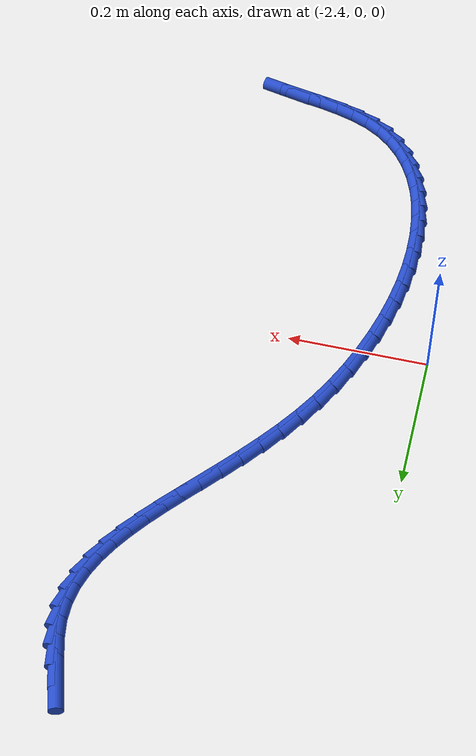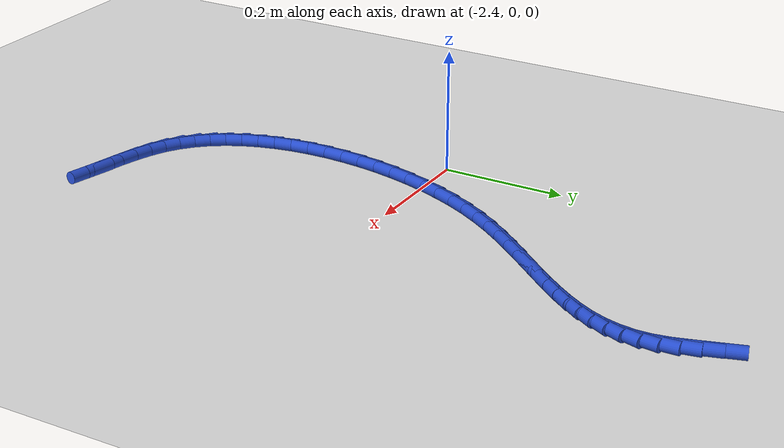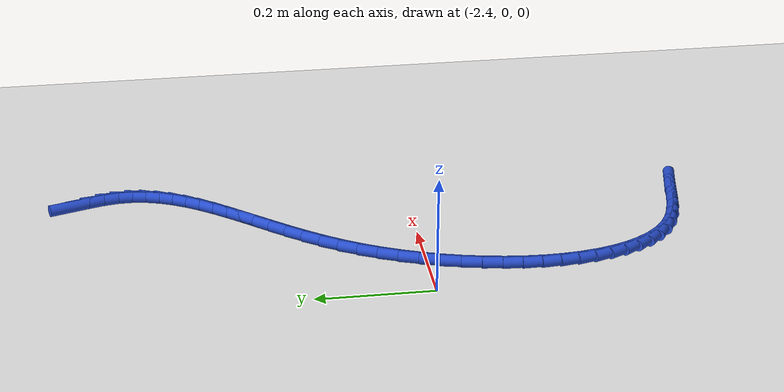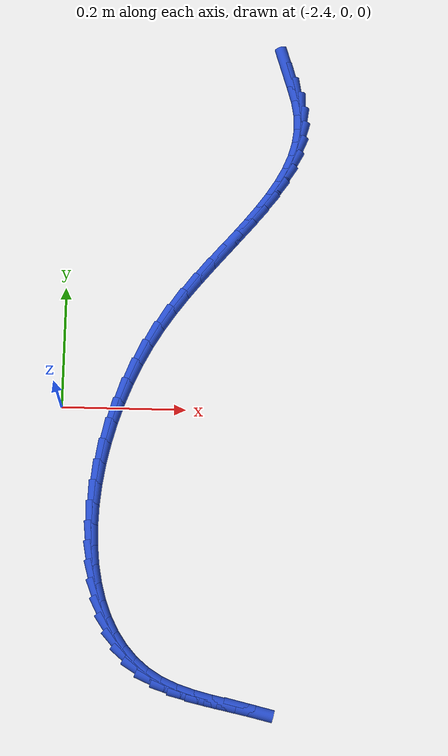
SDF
<sdf version="1.6">
 <world name="default">
  <model name="ground_plane">
   <static>1</static>
   <link name="link">
    <collision name="collision">
     <geometry><plane><normal>0 0 1</normal><size>100 100</size></plane></geometry>
     <surface><friction><ode><mu>100</mu><mu2>50</mu2></ode></friction></surface>
    </collision>
    <visual name="visual">
     <cast_shadows>0</cast_shadows>
     <geometry><plane><normal>0 0 1</normal><size>100 100</size></plane></geometry>
     <material>
      <script><uri>file://media/materials/scripts/gazebo.material</uri><name>Gazebo/WhiteGlow</name></script>
     </material>
    </visual>
   </link>
  </model>
  <model name="line">
   <link name="link_111">
    <pose>-2.042530612775515 0.583922815698654 0.01 0 1.57 -1.2663360719359715</pose>
    <collision name="collision">
     <geometry><cylinder><radius>0.01</radius><length>0.08</length></cylinder></geometry>
    </collision>
    <visual name="visual">
     <material>
      <script><name>Gazebo/Blue</name><uri>file://media/materials/scripts/gazebo.material</uri></script>
     </material>
     <geometry><cylinder><radius>0.01</radius><length>0.08</length></cylinder></geometry>
    </visual>
   </link>
   <link name="link_112">
    <pose>-2.0337556255550173 0.5559974590513748 0.01 0 1.57 -1.2861438327429282</pose>
    <collision name="collision">
     <geometry><cylinder><radius>0.01</radius><length>0.08</length></cylinder></geometry>
    </collision>
    <visual name="visual">
     <material>
      <script><name>Gazebo/Blue</name><uri>file://media/materials/scripts/gazebo.material</uri></script>
     </material>
     <geometry><cylinder><radius>0.01</radius><length>0.08</length></cylinder></geometry>
    </visual>
   </link>
   <link name="link_113">
    <pose>-2.02585379220341 0.5289917206235207 0.01 0 1.57 -1.3949134883984131</pose>
    <collision name="collision">
     <geometry><cylinder><radius>0.01</radius><length>0.08</length></cylinder></geometry>
    </collision>
    <visual name="visual">
     <material>
      <script><name>Gazebo/Blue</name><uri>file://media/materials/scripts/gazebo.material</uri></script>
     </material>
     <geometry><cylinder><radius>0.01</radius><length>0.08</length></cylinder></geometry>
    </visual>
   </link>
   <link name="link_114">
    <pose>-2.0212209493045847 0.5029233892982797 0.01 0 1.57 -1.551788739276246</pose>
    <collision name="collision">
     <geometry><cylinder><radius>0.01</radius><length>0.08</length></cylinder></geometry>
    </collision>
    <visual name="visual">
     <material>
      <script><name>Gazebo/Blue</name><uri>file://media/materials/scripts/gazebo.material</uri></script>
     </material>
     <geometry><cylinder><radius>0.01</radius><length>0.08</length></cylinder></geometry>
    </visual>
   </link>
   <link name="link_115">
    <pose>-2.020741853364173 0.47772091469248046 0.01 0 1.57 1.4352643036282615</pose>
    <collision name="collision">
     <geometry><cylinder><radius>0.01</radius><length>0.08</length></cylinder></geometry>
    </collision>
    <visual name="visual">
     <material>
      <script><name>Gazebo/Blue</name><uri>file://media/materials/scripts/gazebo.material</uri></script>
     </material>
     <geometry><cylinder><radius>0.01</radius><length>0.08</length></cylinder></geometry>
    </visual>
   </link>
   <link name="link_116">
    <pose>-2.0240801918986744 0.4532405534205878 0.01 0 1.57 1.2942461503685037</pose>
    <collision name="collision">
     <geometry><cylinder><radius>0.01</radius><length>0.08</length></cylinder></geometry>
    </collision>
    <visual name="visual">
     <material>
      <script><name>Gazebo/Blue</name><uri>file://media/materials/scripts/gazebo.material</uri></script>
     </material>
     <geometry><cylinder><radius>0.01</radius><length>0.08</length></cylinder></geometry>
    </visual>
   </link>
   <link name="link_117">
    <pose>-2.0308647114728076 0.42933649629059834 0.01 0 1.57 1.1731483797332016</pose>
    <collision name="collision">
     <geometry><cylinder><radius>0.01</radius><length>0.08</length></cylinder></geometry>
    </collision>
    <visual name="visual">
     <material>
      <script><name>Gazebo/Blue</name><uri>file://media/materials/scripts/gazebo.material</uri></script>
     </material>
     <geometry><cylinder><radius>0.01</radius><length>0.08</length></cylinder></geometry>
    </visual>
   </link>
   <link name="link_118">
    <pose>-2.040724158651291 0.40586293411050867 0.01 0 1.57 1.0742908915062597</pose>
    <collision name="collision">
     <geometry><cylinder><radius>0.01</radius><length>0.08</length></cylinder></geometry>
    </collision>
    <visual name="visual">
     <material>
      <script><name>Gazebo/Blue</name><uri>file://media/materials/scripts/gazebo.material</uri></script>
     </material>
     <geometry><cylinder><radius>0.01</radius><length>0.08</length></cylinder></geometry>
    </visual>
   </link>
   <link name="link_119">
    <pose>-2.053287279998844 0.3826740576883166 0.01 0 1.57 0.9970777525786176</pose>
    <collision name="collision">
     <geometry><cylinder><radius>0.01</radius><length>0.08</length></cylinder></geometry>
    </collision>
    <visual name="visual">
     <material>
      <script><name>Gazebo/Blue</name><uri>file://media/materials/scripts/gazebo.material</uri></script>
     </material>
     <geometry><cylinder><radius>0.01</radius><length>0.08</length></cylinder></geometry>
    </visual>
   </link>
   <link name="link_120">
    <pose>-2.0681828220801846 0.3596240578320188 0.01 0 1.57 0.9395073985905467</pose>
    <collision name="collision">
     <geometry><cylinder><radius>0.01</radius><length>0.08</length></cylinder></geometry>
    </collision>
    <visual name="visual">
     <material>
      <script><name>Gazebo/Blue</name><uri>file://media/materials/scripts/gazebo.material</uri></script>
     </material>
     <geometry><cylinder><radius>0.01</radius><length>0.08</length></cylinder></geometry>
    </visual>
   </link>
   <link name="link_121">
    <pose>-2.08503953146003 0.33656712534961203 0.01 0 1.57 0.8992454146757094</pose>
    <collision name="collision">
     <geometry><cylinder><radius>0.01</radius><length>0.08</length></cylinder></geometry>
    </collision>
    <visual name="visual">
     <material>
      <script><name>Gazebo/Blue</name><uri>file://media/materials/scripts/gazebo.material</uri></script>
     </material>
     <geometry><cylinder><radius>0.01</radius><length>0.08</length></cylinder></geometry>
    </visual>
   </link>
   <link name="link_122">
    <pose>-2.1034861547031 0.3133574510490935 0.01 0 1.57 0.8741757592519622</pose>
    <collision name="collision">
     <geometry><cylinder><radius>0.01</radius><length>0.08</length></cylinder></geometry>
    </collision>
    <visual name="visual">
     <material>
      <script><name>Gazebo/Blue</name><uri>file://media/materials/scripts/gazebo.material</uri></script>
     </material>
     <geometry><cylinder><radius>0.01</radius><length>0.08</length></cylinder></geometry>
    </visual>
   </link>
   <link name="link_123">
    <pose>-2.1231514383741135 0.28984922573845984 0.01 0 1.57 0.8626057586442114</pose>
    <collision name="collision">
     <geometry><cylinder><radius>0.01</radius><length>0.08</length></cylinder></geometry>
    </collision>
    <visual name="visual">
     <material>
      <script><name>Gazebo/Blue</name><uri>file://media/materials/scripts/gazebo.material</uri></script>
     </material>
     <geometry><cylinder><radius>0.01</radius><length>0.08</length></cylinder></geometry>
    </visual>
   </link>
   <link name="link_124">
    <pose>-2.1436641290377874 0.26589664022570864 0.01 0 1.57 0.8632939491763031</pose>
    <collision name="collision">
     <geometry><cylinder><radius>0.01</radius><length>0.08</length></cylinder></geometry>
    </collision>
    <visual name="visual">
     <material>
      <script><name>Gazebo/Blue</name><uri>file://media/materials/scripts/gazebo.material</uri></script>
     </material>
     <geometry><cylinder><radius>0.01</radius><length>0.08</length></cylinder></geometry>
    </visual>
   </link>
   <link name="link_125">
    <pose>-2.16465297325884 0.24135388531883656 0.01 0 1.57 0.8754016072882711</pose>
    <collision name="collision">
     <geometry><cylinder><radius>0.01</radius><length>0.08</length></cylinder></geometry>
    </collision>
    <visual name="visual">
     <material>
      <script><name>Gazebo/Blue</name><uri>file://media/materials/scripts/gazebo.material</uri></script>
     </material>
     <geometry><cylinder><radius>0.01</radius><length>0.08</length></cylinder></geometry>
    </visual>
   </link>
   <link name="link_126">
    <pose>-2.185746717601992 0.21607515182584036 0.01 0 1.57 0.8984145638575556</pose>
    <collision name="collision">
     <geometry><cylinder><radius>0.01</radius><length>0.08</length></cylinder></geometry>
    </collision>
    <visual name="visual">
     <material>
      <script><name>Gazebo/Blue</name><uri>file://media/materials/scripts/gazebo.material</uri></script>
     </material>
     <geometry><cylinder><radius>0.01</radius><length>0.08</length></cylinder></geometry>
    </visual>
   </link>
   <link name="link_127">
    <pose>-2.20657410863196 0.18991463055471763 0.01 0 1.57 0.932050727363296</pose>
    <collision name="collision">
     <geometry><cylinder><radius>0.01</radius><length>0.08</length></cylinder></geometry>
    </collision>
    <visual name="visual">
     <material>
      <script><name>Gazebo/Blue</name><uri>file://media/materials/scripts/gazebo.material</uri></script>
     </material>
     <geometry><cylinder><radius>0.01</radius><length>0.08</length></cylinder></geometry>
    </visual>
   </link>
   <link name="link_128">
    <pose>-2.2267638929134628 0.16272651231346502 0.01 0 1.57 0.9761535029052871</pose>
    <collision name="collision">
     <geometry><cylinder><radius>0.01</radius><length>0.08</length></cylinder></geometry>
    </collision>
    <visual name="visual">
     <material>
      <script><name>Gazebo/Blue</name><uri>file://media/materials/scripts/gazebo.material</uri></script>
     </material>
     <geometry><cylinder><radius>0.01</radius><length>0.08</length></cylinder></geometry>
    </visual>
   </link>
   <link name="link_129">
    <pose>-2.2459448170112193 0.13436498791007961 0.01 0 1.57 1.0303556762842017</pose>
    <collision name="collision">
     <geometry><cylinder><radius>0.01</radius><length>0.08</length></cylinder></geometry>
    </collision>
    <visual name="visual">
     <material>
      <script><name>Gazebo/Blue</name><uri>file://media/materials/scripts/gazebo.material</uri></script>
     </material>
     <geometry><cylinder><radius>0.01</radius><length>0.08</length></cylinder></geometry>
    </visual>
   </link>
   <link name="link_130">
    <pose>-2.263750536817909 0.10469021087527848 0.01 0 1.57 1.088532302124973</pose>
    <collision name="collision">
     <geometry><cylinder><radius>0.01</radius><length>0.08</length></cylinder></geometry>
    </collision>
    <visual name="visual">
     <material>
      <script><name>Gazebo/Blue</name><uri>file://media/materials/scripts/gazebo.material</uri></script>
     </material>
     <geometry><cylinder><radius>0.01</radius><length>0.08</length></cylinder></geometry>
    </visual>
   </link>
   <link name="link_131">
    <pose>-2.279955934024553 0.0737338633650574 0.01 0 1.57 1.1444909585686067</pose>
    <collision name="collision">
     <geometry><cylinder><radius>0.01</radius><length>0.08</length></cylinder></geometry>
    </collision>
    <visual name="visual">
     <material>
      <script><name>Gazebo/Blue</name><uri>file://media/materials/scripts/gazebo.material</uri></script>
     </material>
     <geometry><cylinder><radius>0.01</radius><length>0.08</length></cylinder></geometry>
    </visual>
   </link>
   <link name="link_132">
    <pose>-2.2944949035281175 0.04172076021328842 0.01 0 1.57 1.1986925806063717</pose>
    <collision name="collision">
     <geometry><cylinder><radius>0.01</radius><length>0.08</length></cylinder></geometry>
    </collision>
    <visual name="visual">
     <material>
      <script><name>Gazebo/Blue</name><uri>file://media/materials/scripts/gazebo.material</uri></script>
     </material>
     <geometry><cylinder><radius>0.01</radius><length>0.08</length></cylinder></geometry>
    </visual>
   </link>
   <link name="link_133">
    <pose>-2.3073098227359288 0.008886018856887815 0.01 0 1.57 1.2519346389183745</pose>
    <collision name="collision">
     <geometry><cylinder><radius>0.01</radius><length>0.08</length></cylinder></geometry>
    </collision>
    <visual name="visual">
     <material>
      <script><name>Gazebo/Blue</name><uri>file://media/materials/scripts/gazebo.material</uri></script>
     </material>
     <geometry><cylinder><radius>0.01</radius><length>0.08</length></cylinder></geometry>
    </visual>
   </link>
   <link name="link_134">
    <pose>-2.3183430690553126 -0.024535243267225268 0.01 0 1.57 1.3050066826463076</pose>
    <collision name="collision">
     <geometry><cylinder><radius>0.01</radius><length>0.08</length></cylinder></geometry>
    </collision>
    <visual name="visual">
     <material>
      <script><name>Gazebo/Blue</name><uri>file://media/materials/scripts/gazebo.material</uri></script>
     </material>
     <geometry><cylinder><radius>0.01</radius><length>0.08</length></cylinder></geometry>
    </visual>
   </link>
   <link name="link_135">
    <pose>-2.327537019893591 -0.05830790872213448 0.01 0 1.57 1.3587125272697336</pose>
    <collision name="collision">
     <geometry><cylinder><radius>0.01</radius><length>0.08</length></cylinder></geometry>
    </collision>
    <visual name="visual">
     <material>
      <script><name>Gazebo/Blue</name><uri>file://media/materials/scripts/gazebo.material</uri></script>
     </material>
     <geometry><cylinder><radius>0.01</radius><length>0.08</length></cylinder></geometry>
    </visual>
   </link>
   <link name="link_136">
    <pose>-2.334834052658091 -0.09219686007092262 0.01 0 1.57 1.413894917358745</pose>
    <collision name="collision">
     <geometry><cylinder><radius>0.01</radius><length>0.08</length></cylinder></geometry>
    </collision>
    <visual name="visual">
     <material>
      <script><name>Gazebo/Blue</name><uri>file://media/materials/scripts/gazebo.material</uri></script>
     </material>
     <geometry><cylinder><radius>0.01</radius><length>0.08</length></cylinder></geometry>
    </visual>
   </link>
   <link name="link_137">
    <pose>-2.3401765447561345 -0.1259669798766723 0.01 0 1.57 1.471462148661782</pose>
    <collision name="collision">
     <geometry><cylinder><radius>0.01</radius><length>0.08</length></cylinder></geometry>
    </collision>
    <visual name="visual">
     <material>
      <script><name>Gazebo/Blue</name><uri>file://media/materials/scripts/gazebo.material</uri></script>
     </material>
     <geometry><cylinder><radius>0.01</radius><length>0.08</length></cylinder></geometry>
    </visual>
   </link>
   <link name="link_138">
    <pose>-2.3435068735950475 -0.15938315070246636 0.01 0 1.57 1.5324157265932081</pose>
    <collision name="collision">
     <geometry><cylinder><radius>0.01</radius><length>0.08</length></cylinder></geometry>
    </collision>
    <visual name="visual">
     <material>
      <script><name>Gazebo/Blue</name><uri>file://media/materials/scripts/gazebo.material</uri></script>
     </material>
     <geometry><cylinder><radius>0.01</radius><length>0.08</length></cylinder></geometry>
    </visual>
   </link>
   <link name="link_139">
    <pose>-2.344767416582156 -0.19221025511138765 0.01 0 1.57 -1.543715875183872</pose>
    <collision name="collision">
     <geometry><cylinder><radius>0.01</radius><length>0.08</length></cylinder></geometry>
    </collision>
    <visual name="visual">
     <material>
      <script><name>Gazebo/Blue</name><uri>file://media/materials/scripts/gazebo.material</uri></script>
     </material>
     <geometry><cylinder><radius>0.01</radius><length>0.08</length></cylinder></geometry>
    </visual>
   </link>
   <link name="link_140">
    <pose>-2.343900551124781 -0.22421317566651944 0.01 0 1.57 -1.4724866190842654</pose>
    <collision name="collision">
     <geometry><cylinder><radius>0.01</radius><length>0.08</length></cylinder></geometry>
    </collision>
    <visual name="visual">
     <material>
      <script><name>Gazebo/Blue</name><uri>file://media/materials/scripts/gazebo.material</uri></script>
     </material>
     <geometry><cylinder><radius>0.01</radius><length>0.08</length></cylinder></geometry>
    </visual>
   </link>
   <link name="link_141">
    <pose>-2.3408486546302507 -0.2551567949309431 0.01 0 1.57 -1.3940858355207666</pose>
    <collision name="collision">
     <geometry><cylinder><radius>0.01</radius><length>0.08</length></cylinder></geometry>
    </collision>
    <visual name="visual">
     <material>
      <script><name>Gazebo/Blue</name><uri>file://media/materials/scripts/gazebo.material</uri></script>
     </material>
     <geometry><cylinder><radius>0.01</radius><length>0.08</length></cylinder></geometry>
    </visual>
   </link>
   <link name="link_142">
    <pose>-2.335554104505887 -0.284805995467742 0.01 0 1.57 -1.3070010669418075</pose>
    <collision name="collision">
     <geometry><cylinder><radius>0.01</radius><length>0.08</length></cylinder></geometry>
    </collision>
    <visual name="visual">
     <material>
      <script><name>Gazebo/Blue</name><uri>file://media/materials/scripts/gazebo.material</uri></script>
     </material>
     <geometry><cylinder><radius>0.01</radius><length>0.08</length></cylinder></geometry>
    </visual>
   </link>
   <link name="link_143">
    <pose>-2.3279592781590157 -0.312925659839999 0.01 0 1.57 -1.2097125197895269</pose>
    <collision name="collision">
     <geometry><cylinder><radius>0.01</radius><length>0.08</length></cylinder></geometry>
    </collision>
    <visual name="visual">
     <material>
      <script><name>Gazebo/Blue</name><uri>file://media/materials/scripts/gazebo.material</uri></script>
     </material>
     <geometry><cylinder><radius>0.01</radius><length>0.08</length></cylinder></geometry>
    </visual>
   </link>
   <link name="link_144">
    <pose>-2.3180065529969607 -0.3392806706107967 0.01 0 1.57 -1.10090679886855</pose>
    <collision name="collision">
     <geometry><cylinder><radius>0.01</radius><length>0.08</length></cylinder></geometry>
    </collision>
    <visual name="visual">
     <material>
      <script><name>Gazebo/Blue</name><uri>file://media/materials/scripts/gazebo.material</uri></script>
     </material>
     <geometry><cylinder><radius>0.01</radius><length>0.08</length></cylinder></geometry>
    </visual>
   </link>
   <link name="link_145">
    <pose>-2.3056383064270474 -0.36363591034321807 0.01 0 1.57 -0.979842275356443</pose>
    <collision name="collision">
     <geometry><cylinder><radius>0.01</radius><length>0.08</length></cylinder></geometry>
    </collision>
    <visual name="visual">
     <material>
      <script><name>Gazebo/Blue</name><uri>file://media/materials/scripts/gazebo.material</uri></script>
     </material>
     <geometry><cylinder><radius>0.01</radius><length>0.08</length></cylinder></geometry>
    </visual>
   </link>
   <link name="link_146">
    <pose>-2.2907969158565993 -0.3857562616003456 0.01 0 1.57 -0.8468558992389744</pose>
    <collision name="collision">
     <geometry><cylinder><radius>0.01</radius><length>0.08</length></cylinder></geometry>
    </collision>
    <visual name="visual">
     <material>
      <script><name>Gazebo/Blue</name><uri>file://media/materials/scripts/gazebo.material</uri></script>
     </material>
     <geometry><cylinder><radius>0.01</radius><length>0.08</length></cylinder></geometry>
    </visual>
   </link>
   <link name="link_147">
    <pose>-2.2734247586929417 -0.40540660694526226 0.01 0 1.57 -0.7038759054754301</pose>
    <collision name="collision">
     <geometry><cylinder><radius>0.01</radius><length>0.08</length></cylinder></geometry>
    </collision>
    <visual name="visual">
     <material>
      <script><name>Gazebo/Blue</name><uri>file://media/materials/scripts/gazebo.material</uri></script>
     </material>
     <geometry><cylinder><radius>0.01</radius><length>0.08</length></cylinder></geometry>
    </visual>
   </link>
   <link name="link_148">
    <pose>-2.253464212343398 -0.42235182894105067 0.01 0 1.57 -0.5546728211547723</pose>
    <collision name="collision">
     <geometry><cylinder><radius>0.01</radius><length>0.08</length></cylinder></geometry>
    </collision>
    <visual name="visual">
     <material>
      <script><name>Gazebo/Blue</name><uri>file://media/materials/scripts/gazebo.material</uri></script>
     </material>
     <geometry><cylinder><radius>0.01</radius><length>0.08</length></cylinder></geometry>
    </visual>
   </link>
   <link name="link_149">
    <pose>-2.2308581345326046 -0.4363574935813277 0.01 0 1.57 -0.41520982405440315</pose>
    <collision name="collision">
     <geometry><cylinder><radius>0.01</radius><length>0.08</length></cylinder></geometry>
    </collision>
    <visual name="visual">
     <material>
      <script><name>Gazebo/Blue</name><uri>file://media/materials/scripts/gazebo.material</uri></script>
     </material>
     <geometry><cylinder><radius>0.01</radius><length>0.08</length></cylinder></geometry>
    </visual>
   </link>
   <link name="link_150">
    <pose>-2.2057239909667437 -0.44743761184250225 0.01 0 1.57 -0.31336817524644384</pose>
    <collision name="collision">
     <geometry><cylinder><radius>0.01</radius><length>0.08</length></cylinder></geometry>
    </collision>
    <visual name="visual">
     <material>
      <script><name>Gazebo/Blue</name><uri>file://media/materials/scripts/gazebo.material</uri></script>
     </material>
     <geometry><cylinder><radius>0.01</radius><length>0.08</length></cylinder></geometry>
    </visual>
   </link>
   <link name="link_151">
    <pose>-2.178612674721593 -0.456222906803301 0.01 0 1.57 -0.248195214011148</pose>
    <collision name="collision">
     <geometry><cylinder><radius>0.01</radius><length>0.08</length></cylinder></geometry>
    </collision>
    <visual name="visual">
     <material>
      <script><name>Gazebo/Blue</name><uri>file://media/materials/scripts/gazebo.material</uri></script>
     </material>
     <geometry><cylinder><radius>0.01</radius><length>0.08</length></cylinder></geometry>
    </visual>
   </link>
   <link name="link_152">
    <pose>-2.1501411846764653 -0.46343816170554464 0.01 0 1.57 -0.2146810856245904</pose>
    <collision name="collision">
     <geometry><cylinder><radius>0.01</radius><length>0.08</length></cylinder></geometry>
    </collision>
    <visual name="visual">
     <material>
      <script><name>Gazebo/Blue</name><uri>file://media/materials/scripts/gazebo.material</uri></script>
     </material>
     <geometry><cylinder><radius>0.01</radius><length>0.08</length></cylinder></geometry>
    </visual>
   </link>
   <link name="link_153">
    <pose>-2.1209265197106735 -0.4698081597910539 0.01 0 1.57 -0.20986130869056785</pose>
    <collision name="collision">
     <geometry><cylinder><radius>0.01</radius><length>0.08</length></cylinder></geometry>
    </collision>
    <visual name="visual">
     <material>
      <script><name>Gazebo/Blue</name><uri>file://media/materials/scripts/gazebo.material</uri></script>
     </material>
     <geometry><cylinder><radius>0.01</radius><length>0.08</length></cylinder></geometry>
    </visual>
   </link>
   <link name="link_154">
    <pose>-2.0915856787035287 -0.4760576843016494 0.01 0 1.57 -0.23324394117127434</pose>
    <collision name="collision">
     <geometry><cylinder><radius>0.01</radius><length>0.08</length></cylinder></geometry>
    </collision>
    <visual name="visual">
     <material>
      <script><name>Gazebo/Blue</name><uri>file://media/materials/scripts/gazebo.material</uri></script>
     </material>
     <geometry><cylinder><radius>0.01</radius><length>0.08</length></cylinder></geometry>
    </visual>
   </link>
  </model>
 </world>
</sdf>
